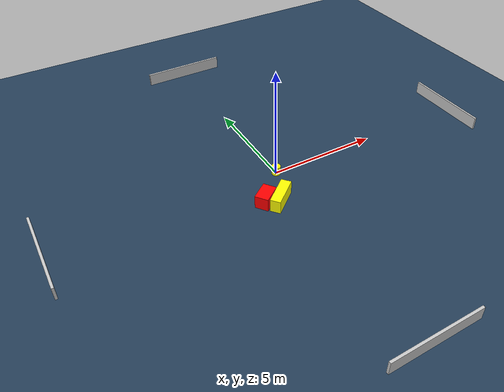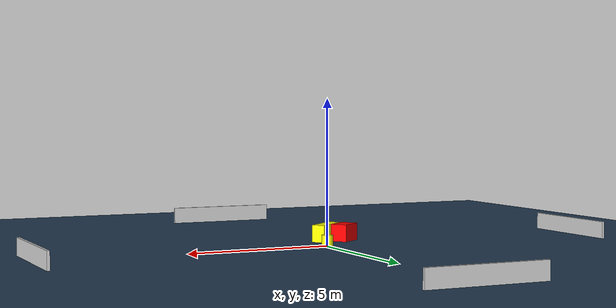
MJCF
<?xml version="1.0" ?>
<mujoco model="generated_environment">
  <option timestep="0.01" integrator="RK4" cone="elliptic"/>
  <default>
    <geom density="1"/>
  </default>
  <asset>
    <texture builtin="gradient" height="3072" name="skybox" rgb1="0.3 0.5 0.7" rgb2="0 0 0" type="skybox" width="512"/>
    <texture builtin="checker" height="300" name="groundplane" rgb1="0.2 0.3 0.4" rgb2="0.1 0.2 0.3" type="2d" width="300"/>
    <material name="groundplane" reflectance="0.2" texrepeat="5 5" texture="groundplane"/>
  </asset>
  <worldbody>
    <light dir="0 0 -1" directional="true" pos="0 0 1.5"/>
    <geom condim="3" friction="0.5 0.005 0.001" material="groundplane" name="floor" pos="0 0 0" size="0 0 0.05" type="plane"/>
    <body name="walls">
      <geom name="wall_1" condim="4" pos="-10.0 0.0 0.3" rgba="0.800000011920929 0.800000011920929 0.800000011920929 1.0" size="0.05 2.0 0.3" type="box"/>
      <geom name="wall_2" condim="4" pos="10.0 0.0 0.3" rgba="0.800000011920929 0.800000011920929 0.800000011920929 1.0" size="0.05 2.0 0.3" type="box"/>
      <geom name="wall_3" condim="4" pos="0.0 -10.0 0.3" rgba="0.800000011920929 0.800000011920929 0.800000011920929 1.0" size="2.0 0.05 0.3" type="box"/>
      <geom name="wall_4" condim="4" pos="0.0 10.0 0.3" rgba="0.800000011920929 0.800000011920929 0.800000011920929 1.0" size="2.0 0.05 0.3" type="box"/>
    </body>
    <body name="robot">
      <joint name="joint_x" type="slide" pos="0 0 0" axis="1 0 0"/>
      <joint name="joint_y" type="slide" pos="0 0 0" axis="0 1 0"/>
      <geom name="robot" type="cylinder" pos="0.0 0.0 0.2" size="0.2 0.2 0.0" mass="5.0" friction="1.0 0.005 0.0001" condim="4" rgba="1.0 1.0 0.0 1.0"/>
    </body>
    <body name="obstacle_1_movable">
      <geom name="obstacle_1_movable" condim="4" pos="-0.773383327365663 -1.6861283530989297 0.3" euler="0 0 309.65545856534516" friction="0.0 0.005 0.001" rgba="1.0 1.0 0.0 1.0" size="0.22513422897617089 0.6911468642440035 0.3" type="box" mass="0.1"/>
      <joint type="free"/>
    </body>
    <body name="obstacle_2_static">
      <geom name="obstacle_2_static" condim="4" pos="-1.3455502256157001 -1.4354267581595177 0.3" euler="0 0 216.01920651243987" friction="0.0 0.005 0.001" rgba="1.0 0.0 0.0 1.0" size="0.4353026015010417 0.2977464527602032 0.3" type="box"/>
    </body>
  </worldbody>
  <actuator>
    <motor name="actuator_x" joint="joint_x" gear="1" ctrlrange="-1 1"/>
    <motor name="actuator_y" joint="joint_y" gear="1" ctrlrange="-1 1"/>
  </actuator>
</mujoco>
